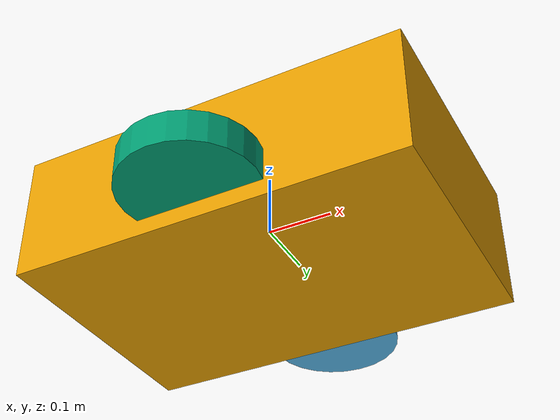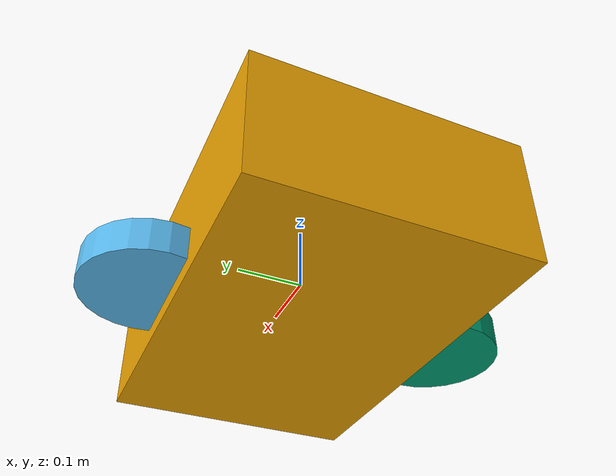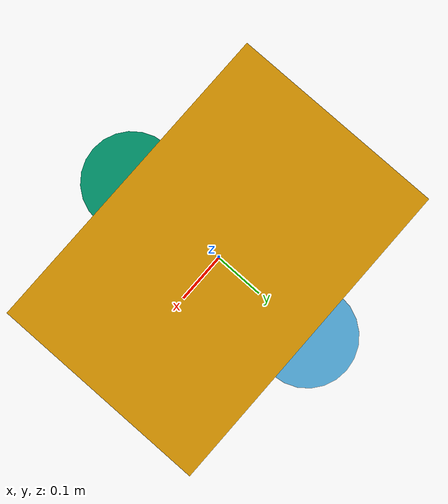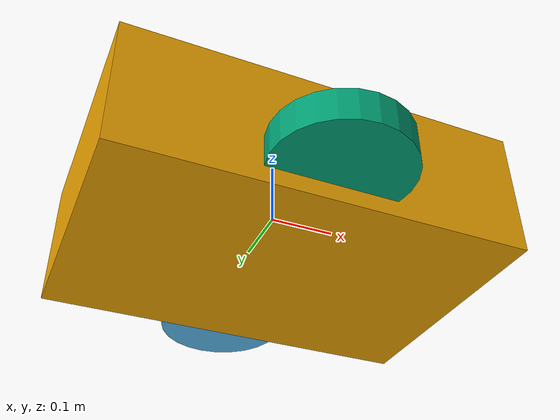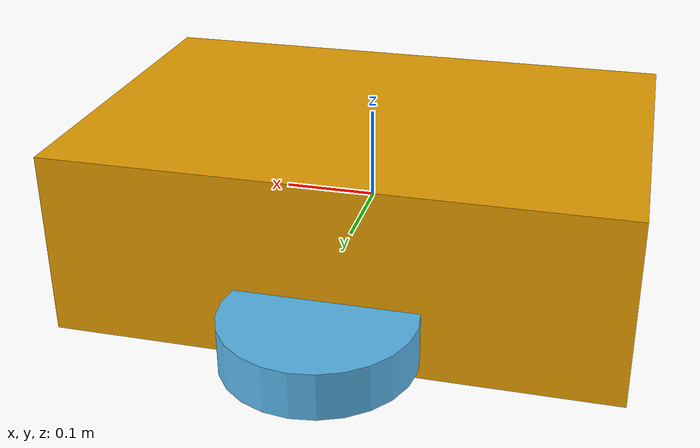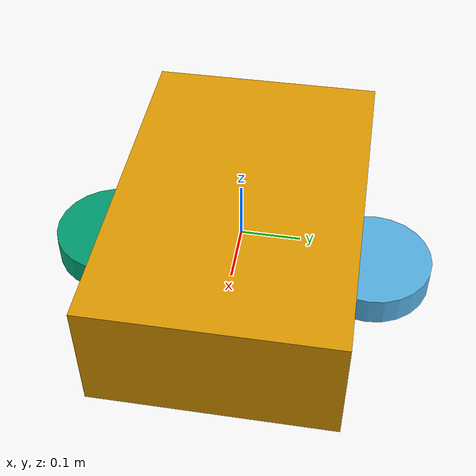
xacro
<?xml version="1.0"?>
<robot xmlns:xacro="http://www.ros.org/wiki/xacro" name="diff_bot">

  <!-- 1. 机器人基础刚体结构定义 (Links & Joints) -->
  <link name="base_link">
    <visual>
      <geometry>
        <box size="0.6 0.4 0.2"/>
      </geometry>
    </visual>
  </link>

  <link name="left_wheel">
    <visual>
      <geometry>
        <cylinder length="0.05" radius="0.1"/>
      </geometry>
    </visual>
  </link>

  <joint name="left_wheel_joint" type="continuous">
    <parent link="base_link"/>
    <child link="left_wheel"/>
    <origin xyz="0 0.225 -0.05" rpy="0 0 0"/>
    <axis xyz="0 1 0"/>
  </joint>

  <link name="right_wheel">
    <visual>
      <geometry>
        <cylinder length="0.05" radius="0.1"/>
      </geometry>
    </visual>
  </link>

  <joint name="right_wheel_joint" type="continuous">
    <parent link="base_link"/>
    <child link="right_wheel"/>
    <origin xyz="0 -0.225 -0.05" rpy="0 0 0"/>
    <axis xyz="0 1 0"/>
  </joint>

  <!-- 2. ros2_control 硬件接口注入契约 -->
  <ros2_control name="DiffBotHardware" type="system">
    <hardware>
      <plugin>cpp_ros2_control_demo/DiffDriveHardware</plugin>
      <param name="can_interface">can0</param>
      <param name="gear_ratio">15.0</param>
    </hardware>

    <joint name="left_wheel_joint">
      <command_interface name="velocity">
        <param name="min">-10</param>
        <param name="max">10</param>
      </command_interface>
      <state_interface name="position"/>
      <state_interface name="velocity"/>
    </joint>

    <joint name="right_wheel_joint">
      <command_interface name="velocity">
        <param name="min">-10</param>
        <param name="max">10</param>
      </command_interface>
      <state_interface name="position"/>
      <state_interface name="velocity"/>
    </joint>
  </ros2_control>

</robot>
